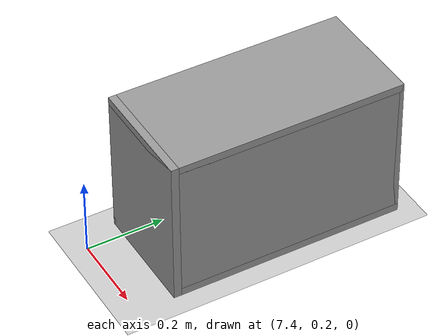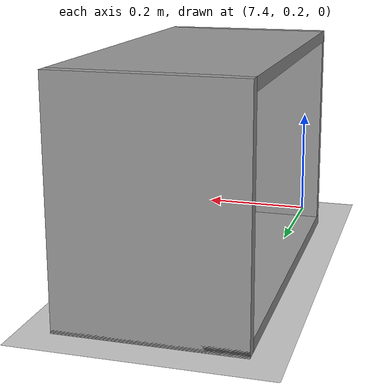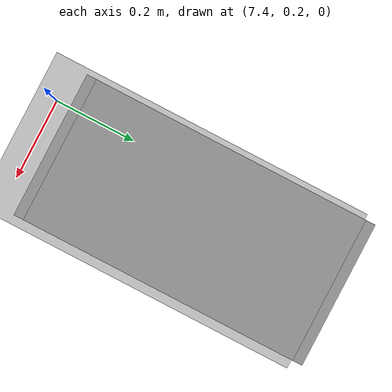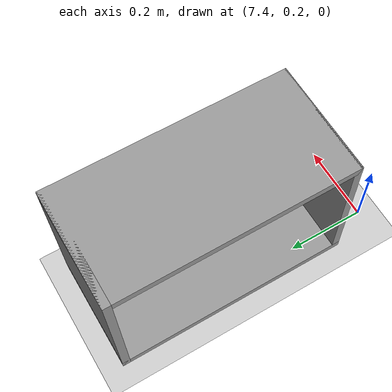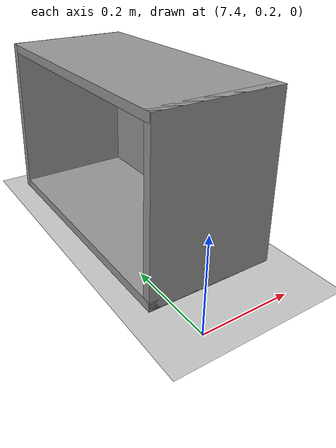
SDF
<sdf version="1.6">
 <world name="default">
  <model name="ground_plane">
   <static>1</static>
   <link name="link">
    <collision name="collision">
     <geometry><plane><normal>0 0 1</normal><size>100 100</size></plane></geometry>
     <surface><friction><ode><mu>100</mu><mu2>50</mu2></ode></friction></surface>
    </collision>
    <visual name="visual">
     <cast_shadows>0</cast_shadows>
     <geometry><plane><normal>0 0 1</normal><size>100 100</size></plane></geometry>
     <material>
      <script><uri>file://media/materials/scripts/gazebo.material</uri><name>Gazebo/Grey</name></script>
     </material>
    </visual>
   </link>
  </model>
  <model name="Wall_Cabinet_24x15W">
   <link name="Wall_41">
    <pose>0 0 0.01 0 -0 0</pose>
    <inertial>
     <mass>1.4983</mass>
     <inertia><ixx>0.011</ixx><iyy>0.0571</iyy><izz>0.0462</izz><ixy>0</ixy><ixz>0</ixz><iyz>0</iyz></inertia>
    </inertial>
    <collision name="Wall_41_Collision"><geometry><box><size>0.608 0.296 0.02</size></box></geometry></collision>
    <visual name="Wall_41_Visual">
     <geometry><box><size>0.608 0.296 0.02</size></box></geometry>
     <material>
      <script><uri>file://media/materials/scripts/gazebo.material</uri><name>Gazebo/Grey</name></script>
      <ambient>1 1 1 1</ambient>
     </material>
    </visual>
    <pose>0.000184 0.181953 0 0 -0 0</pose>
   </link>
   <joint name="41_43" type="fixed">
    <pose>-0.304 0 0 0 -0 0</pose>
    <parent>Wall_43</parent>
    <child>Wall_41</child>
    <axis>
     <xyz>0 0 1</xyz>
     <use_parent_model_frame>0</use_parent_model_frame>
     <limit><lower>-1e+16</lower><upper>1e+16</upper></limit>
    </axis>
   </joint>
   <joint name="41_45" type="fixed">
    <pose>0.304 0 0 0 -0 0</pose>
    <parent>Wall_45</parent>
    <child>Wall_41</child>
    <axis>
     <xyz>0 0 1</xyz>
     <use_parent_model_frame>0</use_parent_model_frame>
     <limit><lower>-1e+16</lower><upper>1e+16</upper></limit>
    </axis>
   </joint>
   <joint name="41_49" type="fixed">
    <pose>0 -0.148 0 0 -0 0</pose>
    <parent>Wall_49</parent>
    <child>Wall_41</child>
    <axis>
     <xyz>0 0 1</xyz>
     <use_parent_model_frame>0</use_parent_model_frame>
     <limit><lower>-1e+16</lower><upper>1e+16</upper></limit>
    </axis>
   </joint>
   <link name="Wall_43">
    <pose>-0.294 0 0.192 0 -0 0</pose>
    <inertial>
     <mass>0.9463</mass>
     <inertia><ixx>0.0069</ixx><iyy>0.0185</iyy><izz>0.0117</izz><ixy>0</ixy><ixz>0</ixz><iyz>0</iyz></inertia>
    </inertial>
    <collision name="Wall_43_Collision"><geometry><box><size>0.02 0.296 0.384</size></box></geometry></collision>
    <visual name="Wall_43_Visual">
     <geometry><box><size>0.02 0.296 0.384</size></box></geometry>
     <material>
      <script><uri>file://media/materials/scripts/gazebo.material</uri><name>Gazebo/Grey</name></script>
      <ambient>1 1 1 1</ambient>
     </material>
    </visual>
   </link>
   <link name="Wall_45">
    <pose>0.294 0 0.192 0 -0 0</pose>
    <inertial>
     <mass>0.9463</mass>
     <inertia><ixx>0.0069</ixx><iyy>0.0185</iyy><izz>0.0117</izz><ixy>0</ixy><ixz>0</ixz><iyz>0</iyz></inertia>
    </inertial>
    <collision name="Wall_45_Collision"><geometry><box><size>0.02 0.296 0.384</size></box></geometry></collision>
    <visual name="Wall_45_Visual">
     <geometry><box><size>0.02 0.296 0.384</size></box></geometry>
     <material>
      <script><uri>file://media/materials/scripts/gazebo.material</uri><name>Gazebo/Grey</name></script>
      <ambient>1 1 1 1</ambient>
     </material>
    </visual>
   </link>
   <link name="Wall_47">
    <pose>0 0 0.374 0 -0 0</pose>
    <inertial>
     <mass>1.4983</mass>
     <inertia><ixx>0.011</ixx><iyy>0.0571</iyy><izz>0.0462</izz><ixy>0</ixy><ixz>0</ixz><iyz>0</iyz></inertia>
    </inertial>
    <collision name="Wall_47_Collision"><geometry><box><size>0.608 0.296 0.02</size></box></geometry></collision>
    <visual name="Wall_47_Visual">
     <geometry><box><size>0.608 0.296 0.02</size></box></geometry>
     <material>
      <script><uri>file://media/materials/scripts/gazebo.material</uri><name>Gazebo/Grey</name></script>
      <ambient>1 1 1 1</ambient>
     </material>
    </visual>
   </link>
   <joint name="47_43" type="fixed">
    <pose>-0.304 0 0 0 -0 0</pose>
    <parent>Wall_43</parent>
    <child>Wall_47</child>
    <axis>
     <xyz>0 0 1</xyz>
     <use_parent_model_frame>0</use_parent_model_frame>
     <limit><lower>-1e+16</lower><upper>1e+16</upper></limit>
    </axis>
   </joint>
   <joint name="47_45" type="fixed">
    <pose>0.304 0 0 0 -0 0</pose>
    <parent>Wall_45</parent>
    <child>Wall_47</child>
    <axis>
     <xyz>0 0 1</xyz>
     <use_parent_model_frame>0</use_parent_model_frame>
     <limit><lower>-1e+16</lower><upper>1e+16</upper></limit>
    </axis>
   </joint>
   <joint name="47_49" type="fixed">
    <pose>0 -0.148 0 0 -0 0</pose>
    <parent>Wall_49</parent>
    <child>Wall_47</child>
    <axis>
     <xyz>0 0 1</xyz>
     <use_parent_model_frame>0</use_parent_model_frame>
     <limit><lower>-1e+16</lower><upper>1e+16</upper></limit>
    </axis>
   </joint>
   <link name="Wall_49">
    <pose>0 -0.138 0.19 0 -0 0</pose>
    <inertial>
     <mass>1.9108</mass>
     <inertia><ixx>0.0231</ixx><iyy>0.0582</iyy><izz>0.0811</izz><ixy>0</ixy><ixz>0</ixz><iyz>0</iyz></inertia>
    </inertial>
    <collision name="Wall_49_Collision"><geometry><box><size>0.604 0.02 0.38</size></box></geometry></collision>
    <visual name="Wall_49_Visual">
     <geometry><box><size>0.604 0.02 0.38</size></box></geometry>
     <material>
      <script><uri>file://media/materials/scripts/gazebo.material</uri><name>Gazebo/Grey</name></script>
      <ambient>1 1 1 1</ambient>
     </material>
    </visual>
   </link>
   <joint name="49_43" type="fixed">
    <pose>-0.302 0 0 0 -0 0</pose>
    <parent>Wall_41</parent>
    <child>Wall_49</child>
    <axis>
     <xyz>0 1 0</xyz>
     <use_parent_model_frame>0</use_parent_model_frame>
     <limit><lower>-1e+16</lower><upper>1e+16</upper></limit>
    </axis>
   </joint>
   <joint name="49_45" type="fixed">
    <pose>0.302 0 0 0 -0 0</pose>
    <parent>Wall_45</parent>
    <child>Wall_49</child>
    <axis>
     <xyz>0 1 0</xyz>
     <use_parent_model_frame>0</use_parent_model_frame>
     <limit><lower>-1e+16</lower><upper>1e+16</upper></limit>
    </axis>
   </joint>
   <static>1</static>
   <pose>7.5 0.6 -0 0 -0 1.5708</pose>
  </model>
 </world>
</sdf>
